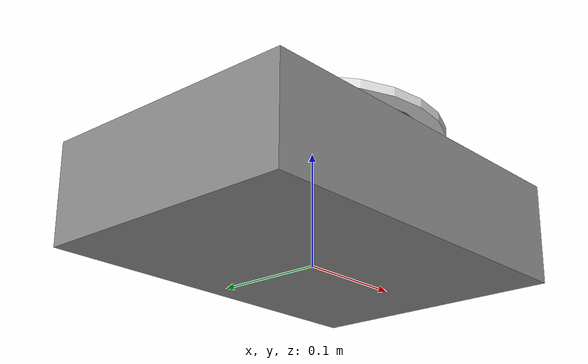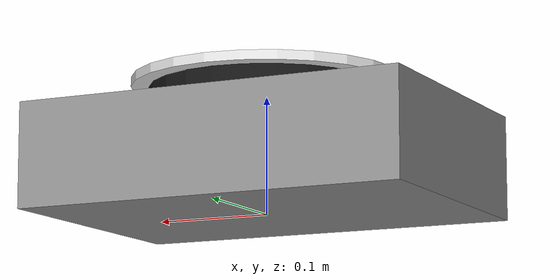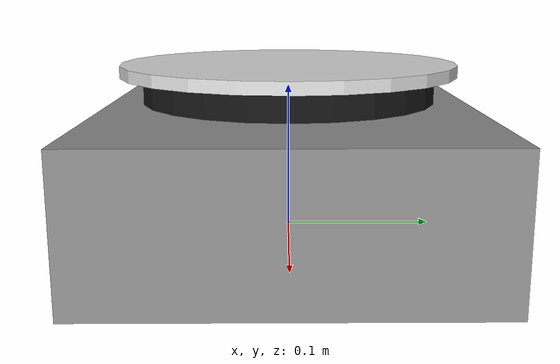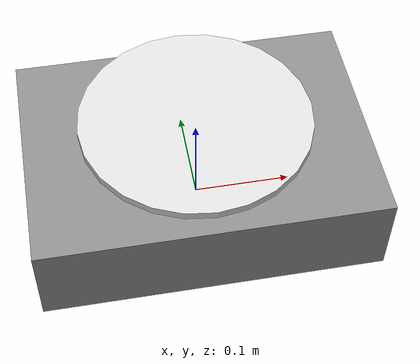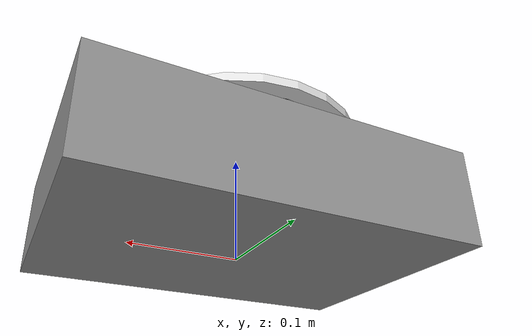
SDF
<?xml version="1.0" ?>
<sdf version="1.7">
  <model name="loader">
    <static>true</static>
    <link name="body">
      <pose>0 0 0 0 0 0</pose>
      <visual name="platform">
        <pose>0 0 0.045 0 0 0</pose>
        <geometry>
          <box><size>0.34 0.24 0.09</size></box>
        </geometry>
        <material>
        <ambient>0.55 0.55 0.55 1</ambient>
        <diffuse>0.55 0.55 0.55 1</diffuse>
        <specular>0.1 0.1 0.1 1.0</specular>
        <emissive>0 0 0 1</emissive>
      </material>
      </visual>
      <visual name="opening">
        <pose>0 0 0.1 0 0 0</pose>
        <geometry>
          <cylinder><radius>0.10</radius><length>0.02</length></cylinder>
        </geometry>
        <material>
        <ambient>0.08 0.08 0.08 1</ambient>
        <diffuse>0.08 0.08 0.08 1</diffuse>
        <specular>0.1 0.1 0.1 1.0</specular>
        <emissive>0 0 0 1</emissive>
      </material>
      </visual>
      <visual name="rim">
        <pose>0 0 0.112 0 0 0</pose>
        <geometry>
          <cylinder><radius>0.115</radius><length>0.008</length></cylinder>
        </geometry>
        <material>
        <ambient>0.86 0.86 0.86 1</ambient>
        <diffuse>0.86 0.86 0.86 1</diffuse>
        <specular>0.1 0.1 0.1 1.0</specular>
        <emissive>0 0 0 1</emissive>
      </material>
      </visual>
      <collision name="collision">
        <pose>0 0 0.045 0 0 0</pose>
        <geometry>
          <box><size>0.34 0.24 0.09</size></box>
        </geometry>
        <surface>
          <friction>
            <ode><mu>0.7</mu><mu2>0.7</mu2></ode>
          </friction>
        </surface>
      </collision>
    </link>
  </model>
</sdf>
